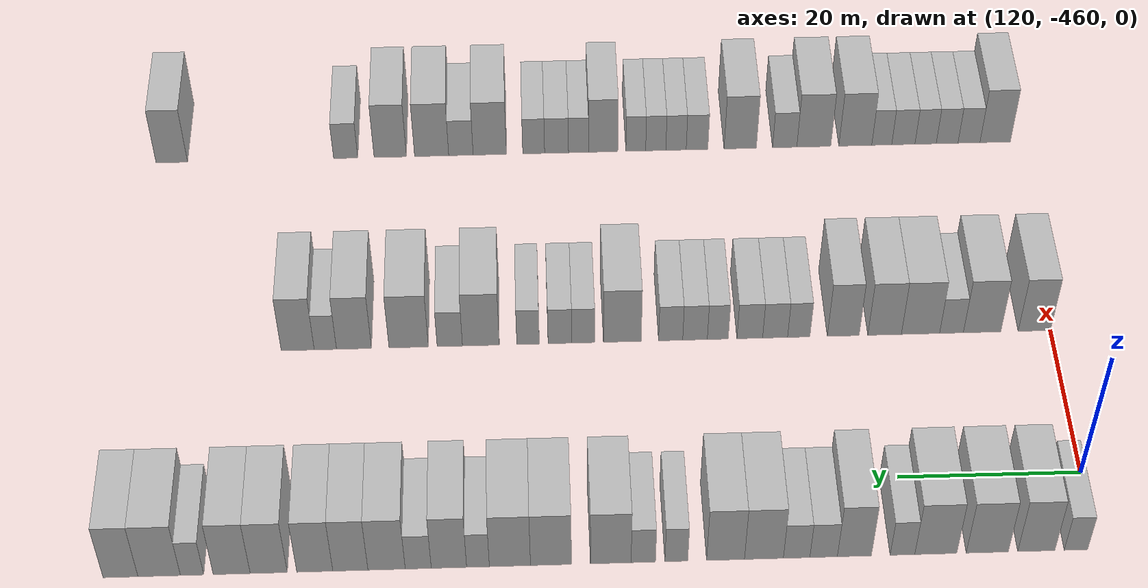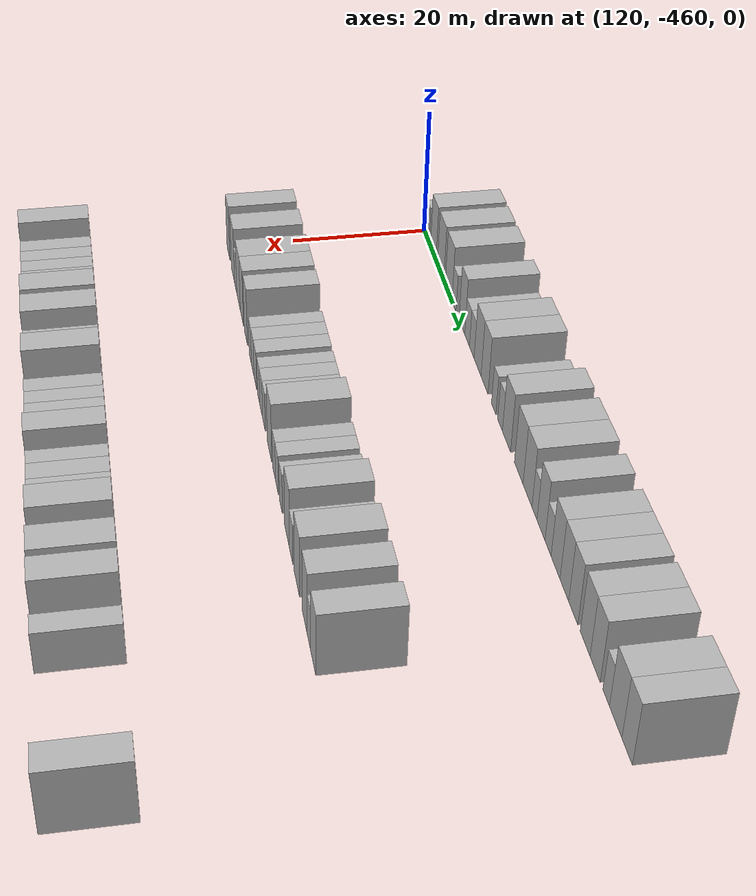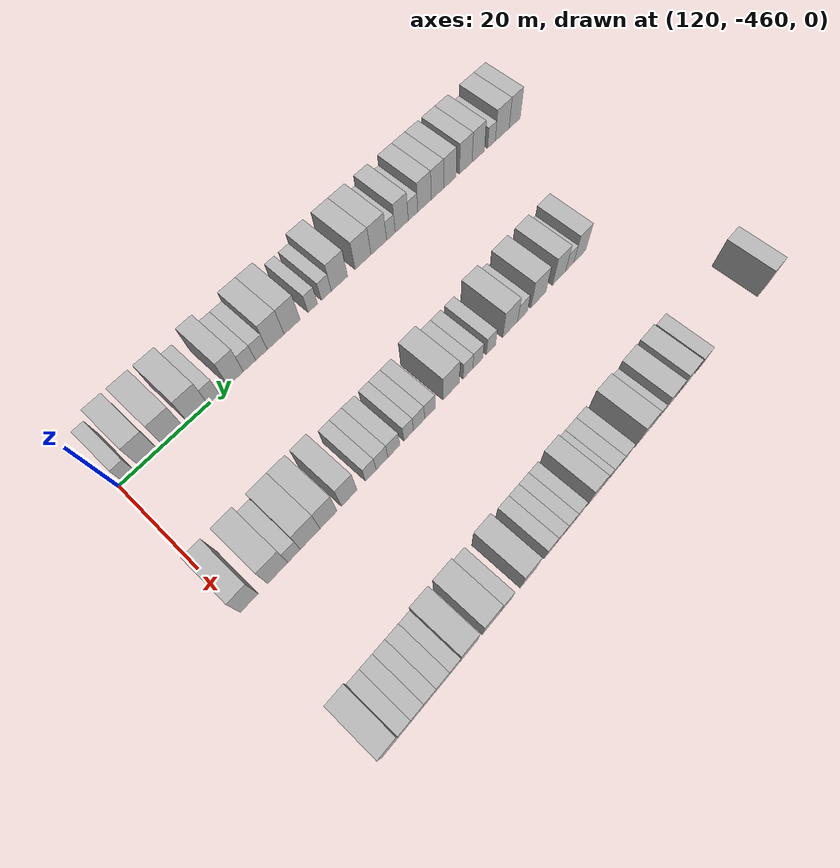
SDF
<sdf version="1.6">
 <world name="default">
  <model name="building_685">
   <static>1</static>
   <pose>115.0000 -457.7495 0 0.000000 0.000000 0.000000</pose>
   <link name="link">
    <pose>0 0 3.00 0 0 0</pose>
    <collision name="collision"><geometry><box><size>10.0000 2.5010 6.0000</size></box></geometry></collision>
    <visual name="visual">
     <cast_shadows>0</cast_shadows>
     <geometry><box><size>10.0000 2.5010 6.0000</size></box></geometry>
     <material>
      <script>
       <uri>model://HANNAS_wall/materials/scripts</uri>
       <uri>model://HANNAS_wall/materials/textures</uri>
       <name>vrc/HANNAS_wall</name>
      </script>
     </material>
    </visual>
   </link>
  </model>
  <model name="building_686">
   <static>1</static>
   <pose>115.0000 -453.5165 0 0.000000 0.000000 0.000000</pose>
   <link name="link">
    <pose>0 0 4.50 0 0 0</pose>
    <collision name="collision"><geometry><box><size>10.0000 3.9651 9.0000</size></box></geometry></collision>
    <visual name="visual">
     <cast_shadows>0</cast_shadows>
     <geometry><box><size>10.0000 3.9651 9.0000</size></box></geometry>
     <material>
      <script>
       <uri>model://HANNAS_wall/materials/scripts</uri>
       <uri>model://HANNAS_wall/materials/textures</uri>
       <name>vrc/HANNAS_wall</name>
      </script>
     </material>
    </visual>
   </link>
  </model>
  <model name="building_687">
   <static>1</static>
   <pose>115.0000 -448.2879 0 0.000000 0.000000 0.000000</pose>
   <link name="link">
    <pose>0 0 4.50 0 0 0</pose>
    <collision name="collision"><geometry><box><size>10.0000 4.4921 9.0000</size></box></geometry></collision>
    <visual name="visual">
     <cast_shadows>0</cast_shadows>
     <geometry><box><size>10.0000 4.4921 9.0000</size></box></geometry>
     <material>
      <script>
       <uri>model://HANNAS_wall/materials/scripts</uri>
       <uri>model://HANNAS_wall/materials/textures</uri>
       <name>vrc/HANNAS_wall</name>
      </script>
     </material>
    </visual>
   </link>
  </model>
  <model name="building_688">
   <static>1</static>
   <pose>115.0000 -442.8027 0 0.000000 0.000000 0.000000</pose>
   <link name="link">
    <pose>0 0 4.50 0 0 0</pose>
    <collision name="collision"><geometry><box><size>10.0000 4.4782 9.0000</size></box></geometry></collision>
    <visual name="visual">
     <cast_shadows>0</cast_shadows>
     <geometry><box><size>10.0000 4.4782 9.0000</size></box></geometry>
     <material>
      <script>
       <uri>model://HANNAS_wall/materials/scripts</uri>
       <uri>model://HANNAS_wall/materials/textures</uri>
       <name>vrc/HANNAS_wall</name>
      </script>
     </material>
    </visual>
   </link>
  </model>
  <model name="building_689">
   <static>1</static>
   <pose>115.0000 -439.2537 0 0.000000 0.000000 0.000000</pose>
   <link name="link">
    <pose>0 0 3.00 0 0 0</pose>
    <collision name="collision"><geometry><box><size>10.0000 2.6199 6.0000</size></box></geometry></collision>
    <visual name="visual">
     <cast_shadows>0</cast_shadows>
     <geometry><box><size>10.0000 2.6199 6.0000</size></box></geometry>
     <material>
      <script>
       <uri>model://HANNAS_wall/materials/scripts</uri>
       <uri>model://HANNAS_wall/materials/textures</uri>
       <name>vrc/HANNAS_wall</name>
      </script>
     </material>
    </visual>
   </link>
  </model>
  <model name="building_690">
   <static>1</static>
   <pose>115.0000 -434.1343 0 0.000000 0.000000 0.000000</pose>
   <link name="link">
    <pose>0 0 4.50 0 0 0</pose>
    <collision name="collision"><geometry><box><size>10.0000 3.6189 9.0000</size></box></geometry></collision>
    <visual name="visual">
     <cast_shadows>0</cast_shadows>
     <geometry><box><size>10.0000 3.6189 9.0000</size></box></geometry>
     <material>
      <script>
       <uri>model://HANNAS_wall/materials/scripts</uri>
       <uri>model://HANNAS_wall/materials/textures</uri>
       <name>vrc/HANNAS_wall</name>
      </script>
     </material>
    </visual>
   </link>
  </model>
  <model name="building_691">
   <static>1</static>
   <pose>115.0000 -430.8651 0 0.000000 0.000000 0.000000</pose>
   <link name="link">
    <pose>0 0 3.00 0 0 0</pose>
    <collision name="collision"><geometry><box><size>10.0000 2.9195 6.0000</size></box></geometry></collision>
    <visual name="visual">
     <cast_shadows>0</cast_shadows>
     <geometry><box><size>10.0000 2.9195 6.0000</size></box></geometry>
     <material>
      <script>
       <uri>model://HANNAS_wall/materials/scripts</uri>
       <uri>model://HANNAS_wall/materials/textures</uri>
       <name>vrc/HANNAS_wall</name>
      </script>
     </material>
    </visual>
   </link>
  </model>
  <model name="building_692">
   <static>1</static>
   <pose>115.0000 -427.9967 0 0.000000 0.000000 0.000000</pose>
   <link name="link">
    <pose>0 0 3.00 0 0 0</pose>
    <collision name="collision"><geometry><box><size>10.0000 2.8173 6.0000</size></box></geometry></collision>
    <visual name="visual">
     <cast_shadows>0</cast_shadows>
     <geometry><box><size>10.0000 2.8173 6.0000</size></box></geometry>
     <material>
      <script>
       <uri>model://HANNAS_wall/materials/scripts</uri>
       <uri>model://HANNAS_wall/materials/textures</uri>
       <name>vrc/HANNAS_wall</name>
      </script>
     </material>
    </visual>
   </link>
  </model>
  <model name="building_693">
   <static>1</static>
   <pose>115.0000 -424.5230 0 0.000000 0.000000 0.000000</pose>
   <link name="link">
    <pose>0 0 4.50 0 0 0</pose>
    <collision name="collision"><geometry><box><size>10.0000 4.1302 9.0000</size></box></geometry></collision>
    <visual name="visual">
     <cast_shadows>0</cast_shadows>
     <geometry><box><size>10.0000 4.1302 9.0000</size></box></geometry>
     <material>
      <script>
       <uri>model://HANNAS_wall/materials/scripts</uri>
       <uri>model://HANNAS_wall/materials/textures</uri>
       <name>vrc/HANNAS_wall</name>
      </script>
     </material>
    </visual>
   </link>
  </model>
  <model name="building_694">
   <static>1</static>
   <pose>115.0000 -420.4504 0 0.000000 0.000000 0.000000</pose>
   <link name="link">
    <pose>0 0 4.50 0 0 0</pose>
    <collision name="collision"><geometry><box><size>10.0000 4.0151 9.0000</size></box></geometry></collision>
    <visual name="visual">
     <cast_shadows>0</cast_shadows>
     <geometry><box><size>10.0000 4.0151 9.0000</size></box></geometry>
     <material>
      <script>
       <uri>model://HANNAS_wall/materials/scripts</uri>
       <uri>model://HANNAS_wall/materials/textures</uri>
       <name>vrc/HANNAS_wall</name>
      </script>
     </material>
    </visual>
   </link>
  </model>
  <model name="building_695">
   <static>1</static>
   <pose>115.0000 -415.2321 0 0.000000 0.000000 0.000000</pose>
   <link name="link">
    <pose>0 0 3.00 0 0 0</pose>
    <collision name="collision"><geometry><box><size>10.0000 2.4215 6.0000</size></box></geometry></collision>
    <visual name="visual">
     <cast_shadows>0</cast_shadows>
     <geometry><box><size>10.0000 2.4215 6.0000</size></box></geometry>
     <material>
      <script>
       <uri>model://HANNAS_wall/materials/scripts</uri>
       <uri>model://HANNAS_wall/materials/textures</uri>
       <name>vrc/HANNAS_wall</name>
      </script>
     </material>
    </visual>
   </link>
  </model>
  <model name="building_696">
   <static>1</static>
   <pose>115.0000 -411.7297 0 0.000000 0.000000 0.000000</pose>
   <link name="link">
    <pose>0 0 3.00 0 0 0</pose>
    <collision name="collision"><geometry><box><size>10.0000 2.5832 6.0000</size></box></geometry></collision>
    <visual name="visual">
     <cast_shadows>0</cast_shadows>
     <geometry><box><size>10.0000 2.5832 6.0000</size></box></geometry>
     <material>
      <script>
       <uri>model://HANNAS_wall/materials/scripts</uri>
       <uri>model://HANNAS_wall/materials/textures</uri>
       <name>vrc/HANNAS_wall</name>
      </script>
     </material>
    </visual>
   </link>
  </model>
  <model name="building_697">
   <static>1</static>
   <pose>115.0000 -408.2871 0 0.000000 0.000000 0.000000</pose>
   <link name="link">
    <pose>0 0 4.50 0 0 0</pose>
    <collision name="collision"><geometry><box><size>10.0000 4.3021 9.0000</size></box></geometry></collision>
    <visual name="visual">
     <cast_shadows>0</cast_shadows>
     <geometry><box><size>10.0000 4.3021 9.0000</size></box></geometry>
     <material>
      <script>
       <uri>model://HANNAS_wall/materials/scripts</uri>
       <uri>model://HANNAS_wall/materials/textures</uri>
       <name>vrc/HANNAS_wall</name>
      </script>
     </material>
    </visual>
   </link>
  </model>
  <model name="building_698">
   <static>1</static>
   <pose>115.0000 -401.9694 0 0.000000 0.000000 0.000000</pose>
   <link name="link">
    <pose>0 0 4.50 0 0 0</pose>
    <collision name="collision"><geometry><box><size>10.0000 4.3332 9.0000</size></box></geometry></collision>
    <visual name="visual">
     <cast_shadows>0</cast_shadows>
     <geometry><box><size>10.0000 4.3332 9.0000</size></box></geometry>
     <material>
      <script>
       <uri>model://HANNAS_wall/materials/scripts</uri>
       <uri>model://HANNAS_wall/materials/textures</uri>
       <name>vrc/HANNAS_wall</name>
      </script>
     </material>
    </visual>
   </link>
  </model>
  <model name="building_699">
   <static>1</static>
   <pose>115.0000 -397.6301 0 0.000000 0.000000 0.000000</pose>
   <link name="link">
    <pose>0 0 4.50 0 0 0</pose>
    <collision name="collision"><geometry><box><size>10.0000 4.3455 9.0000</size></box></geometry></collision>
    <visual name="visual">
     <cast_shadows>0</cast_shadows>
     <geometry><box><size>10.0000 4.3455 9.0000</size></box></geometry>
     <material>
      <script>
       <uri>model://HANNAS_wall/materials/scripts</uri>
       <uri>model://HANNAS_wall/materials/textures</uri>
       <name>vrc/HANNAS_wall</name>
      </script>
     </material>
    </visual>
   </link>
  </model>
  <model name="building_700">
   <static>1</static>
   <pose>115.0000 -394.2560 0 0.000000 0.000000 0.000000</pose>
   <link name="link">
    <pose>0 0 3.00 0 0 0</pose>
    <collision name="collision"><geometry><box><size>10.0000 2.4027 6.0000</size></box></geometry></collision>
    <visual name="visual">
     <cast_shadows>0</cast_shadows>
     <geometry><box><size>10.0000 2.4027 6.0000</size></box></geometry>
     <material>
      <script>
       <uri>model://HANNAS_wall/materials/scripts</uri>
       <uri>model://HANNAS_wall/materials/textures</uri>
       <name>vrc/HANNAS_wall</name>
      </script>
     </material>
    </visual>
   </link>
  </model>
  <model name="building_701">
   <static>1</static>
   <pose>115.0000 -391.1911 0 0.000000 0.000000 0.000000</pose>
   <link name="link">
    <pose>0 0 4.50 0 0 0</pose>
    <collision name="collision"><geometry><box><size>10.0000 3.7272 9.0000</size></box></geometry></collision>
    <visual name="visual">
     <cast_shadows>0</cast_shadows>
     <geometry><box><size>10.0000 3.7272 9.0000</size></box></geometry>
     <material>
      <script>
       <uri>model://HANNAS_wall/materials/scripts</uri>
       <uri>model://HANNAS_wall/materials/textures</uri>
       <name>vrc/HANNAS_wall</name>
      </script>
     </material>
    </visual>
   </link>
  </model>
  <model name="building_702">
   <static>1</static>
   <pose>115.0000 -387.9568 0 0.000000 0.000000 0.000000</pose>
   <link name="link">
    <pose>0 0 3.00 0 0 0</pose>
    <collision name="collision"><geometry><box><size>10.0000 2.7414 6.0000</size></box></geometry></collision>
    <visual name="visual">
     <cast_shadows>0</cast_shadows>
     <geometry><box><size>10.0000 2.7414 6.0000</size></box></geometry>
     <material>
      <script>
       <uri>model://HANNAS_wall/materials/scripts</uri>
       <uri>model://HANNAS_wall/materials/textures</uri>
       <name>vrc/HANNAS_wall</name>
      </script>
     </material>
    </visual>
   </link>
  </model>
  <model name="building_703">
   <static>1</static>
   <pose>115.0000 -384.6195 0 0.000000 0.000000 0.000000</pose>
   <link name="link">
    <pose>0 0 4.50 0 0 0</pose>
    <collision name="collision"><geometry><box><size>10.0000 3.9332 9.0000</size></box></geometry></collision>
    <visual name="visual">
     <cast_shadows>0</cast_shadows>
     <geometry><box><size>10.0000 3.9332 9.0000</size></box></geometry>
     <material>
      <script>
       <uri>model://HANNAS_wall/materials/scripts</uri>
       <uri>model://HANNAS_wall/materials/textures</uri>
       <name>vrc/HANNAS_wall</name>
      </script>
     </material>
    </visual>
   </link>
  </model>
  <model name="building_704">
   <static>1</static>
   <pose>115.0000 -380.8035 0 0.000000 0.000000 0.000000</pose>
   <link name="link">
    <pose>0 0 4.50 0 0 0</pose>
    <collision name="collision"><geometry><box><size>10.0000 3.6988 9.0000</size></box></geometry></collision>
    <visual name="visual">
     <cast_shadows>0</cast_shadows>
     <geometry><box><size>10.0000 3.6988 9.0000</size></box></geometry>
     <material>
      <script>
       <uri>model://HANNAS_wall/materials/scripts</uri>
       <uri>model://HANNAS_wall/materials/textures</uri>
       <name>vrc/HANNAS_wall</name>
      </script>
     </material>
    </visual>
   </link>
  </model>
  <model name="building_705">
   <static>1</static>
   <pose>115.0000 -377.0608 0 0.000000 0.000000 0.000000</pose>
   <link name="link">
    <pose>0 0 4.50 0 0 0</pose>
    <collision name="collision"><geometry><box><size>10.0000 3.7867 9.0000</size></box></geometry></collision>
    <visual name="visual">
     <cast_shadows>0</cast_shadows>
     <geometry><box><size>10.0000 3.7867 9.0000</size></box></geometry>
     <material>
      <script>
       <uri>model://HANNAS_wall/materials/scripts</uri>
       <uri>model://HANNAS_wall/materials/textures</uri>
       <name>vrc/HANNAS_wall</name>
      </script>
     </material>
    </visual>
   </link>
  </model>
  <model name="building_706">
   <static>1</static>
   <pose>115.0000 -372.2156 0 0.000000 0.000000 0.000000</pose>
   <link name="link">
    <pose>0 0 4.50 0 0 0</pose>
    <collision name="collision"><geometry><box><size>10.0000 3.9038 9.0000</size></box></geometry></collision>
    <visual name="visual">
     <cast_shadows>0</cast_shadows>
     <geometry><box><size>10.0000 3.9038 9.0000</size></box></geometry>
     <material>
      <script>
       <uri>model://HANNAS_wall/materials/scripts</uri>
       <uri>model://HANNAS_wall/materials/textures</uri>
       <name>vrc/HANNAS_wall</name>
      </script>
     </material>
    </visual>
   </link>
  </model>
  <model name="building_707">
   <static>1</static>
   <pose>115.0000 -368.3214 0 0.000000 0.000000 0.000000</pose>
   <link name="link">
    <pose>0 0 4.50 0 0 0</pose>
    <collision name="collision"><geometry><box><size>10.0000 3.8847 9.0000</size></box></geometry></collision>
    <visual name="visual">
     <cast_shadows>0</cast_shadows>
     <geometry><box><size>10.0000 3.8847 9.0000</size></box></geometry>
     <material>
      <script>
       <uri>model://HANNAS_wall/materials/scripts</uri>
       <uri>model://HANNAS_wall/materials/textures</uri>
       <name>vrc/HANNAS_wall</name>
      </script>
     </material>
    </visual>
   </link>
  </model>
  <model name="building_708">
   <static>1</static>
   <pose>115.0000 -364.1527 0 0.000000 0.000000 0.000000</pose>
   <link name="link">
    <pose>0 0 3.00 0 0 0</pose>
    <collision name="collision"><geometry><box><size>10.0000 2.4526 6.0000</size></box></geometry></collision>
    <visual name="visual">
     <cast_shadows>0</cast_shadows>
     <geometry><box><size>10.0000 2.4526 6.0000</size></box></geometry>
     <material>
      <script>
       <uri>model://HANNAS_wall/materials/scripts</uri>
       <uri>model://HANNAS_wall/materials/textures</uri>
       <name>vrc/HANNAS_wall</name>
      </script>
     </material>
    </visual>
   </link>
  </model>
  <model name="building_709">
   <static>1</static>
   <pose>115.0000 -360.7029 0 0.000000 0.000000 0.000000</pose>
   <link name="link">
    <pose>0 0 4.50 0 0 0</pose>
    <collision name="collision"><geometry><box><size>10.0000 4.4472 9.0000</size></box></geometry></collision>
    <visual name="visual">
     <cast_shadows>0</cast_shadows>
     <geometry><box><size>10.0000 4.4472 9.0000</size></box></geometry>
     <material>
      <script>
       <uri>model://HANNAS_wall/materials/scripts</uri>
       <uri>model://HANNAS_wall/materials/textures</uri>
       <name>vrc/HANNAS_wall</name>
      </script>
     </material>
    </visual>
   </link>
  </model>
  <model name="building_710">
   <static>1</static>
   <pose>115.0000 -356.6535 0 0.000000 0.000000 0.000000</pose>
   <link name="link">
    <pose>0 0 4.50 0 0 0</pose>
    <collision name="collision"><geometry><box><size>10.0000 3.6515 9.0000</size></box></geometry></collision>
    <visual name="visual">
     <cast_shadows>0</cast_shadows>
     <geometry><box><size>10.0000 3.6515 9.0000</size></box></geometry>
     <material>
      <script>
       <uri>model://HANNAS_wall/materials/scripts</uri>
       <uri>model://HANNAS_wall/materials/textures</uri>
       <name>vrc/HANNAS_wall</name>
      </script>
     </material>
    </visual>
   </link>
  </model>
  <model name="building_916">
   <static>1</static>
   <pose>145.0000 -458.1361 0 0.000000 0.000000 0.000000</pose>
   <link name="link">
    <pose>0 0 4.50 0 0 0</pose>
    <collision name="collision"><geometry><box><size>10.0000 3.7279 9.0000</size></box></geometry></collision>
    <visual name="visual">
     <cast_shadows>0</cast_shadows>
     <geometry><box><size>10.0000 3.7279 9.0000</size></box></geometry>
     <material>
      <script>
       <uri>model://HANNAS_wall/materials/scripts</uri>
       <uri>model://HANNAS_wall/materials/textures</uri>
       <name>vrc/HANNAS_wall</name>
      </script>
     </material>
    </visual>
   </link>
  </model>
  <model name="building_917">
   <static>1</static>
   <pose>145.0000 -452.1160 0 0.000000 0.000000 0.000000</pose>
   <link name="link">
    <pose>0 0 4.50 0 0 0</pose>
    <collision name="collision"><geometry><box><size>10.0000 4.3122 9.0000</size></box></geometry></collision>
    <visual name="visual">
     <cast_shadows>0</cast_shadows>
     <geometry><box><size>10.0000 4.3122 9.0000</size></box></geometry>
     <material>
      <script>
       <uri>model://HANNAS_wall/materials/scripts</uri>
       <uri>model://HANNAS_wall/materials/textures</uri>
       <name>vrc/HANNAS_wall</name>
      </script>
     </material>
    </visual>
   </link>
  </model>
  <model name="building_918">
   <static>1</static>
   <pose>145.0000 -448.5892 0 0.000000 0.000000 0.000000</pose>
   <link name="link">
    <pose>0 0 3.00 0 0 0</pose>
    <collision name="collision"><geometry><box><size>10.0000 2.7413 6.0000</size></box></geometry></collision>
    <visual name="visual">
     <cast_shadows>0</cast_shadows>
     <geometry><box><size>10.0000 2.7413 6.0000</size></box></geometry>
     <material>
      <script>
       <uri>model://HANNAS_wall/materials/scripts</uri>
       <uri>model://HANNAS_wall/materials/textures</uri>
       <name>vrc/HANNAS_wall</name>
      </script>
     </material>
    </visual>
   </link>
  </model>
  <model name="building_919">
   <static>1</static>
   <pose>145.0000 -445.0209 0 0.000000 0.000000 0.000000</pose>
   <link name="link">
    <pose>0 0 4.50 0 0 0</pose>
    <collision name="collision"><geometry><box><size>10.0000 4.3955 9.0000</size></box></geometry></collision>
    <visual name="visual">
     <cast_shadows>0</cast_shadows>
     <geometry><box><size>10.0000 4.3955 9.0000</size></box></geometry>
     <material>
      <script>
       <uri>model://HANNAS_wall/materials/scripts</uri>
       <uri>model://HANNAS_wall/materials/textures</uri>
       <name>vrc/HANNAS_wall</name>
      </script>
     </material>
    </visual>
   </link>
  </model>
  <model name="building_920">
   <static>1</static>
   <pose>145.0000 -440.8927 0 0.000000 0.000000 0.000000</pose>
   <link name="link">
    <pose>0 0 4.50 0 0 0</pose>
    <collision name="collision"><geometry><box><size>10.0000 3.8609 9.0000</size></box></geometry></collision>
    <visual name="visual">
     <cast_shadows>0</cast_shadows>
     <geometry><box><size>10.0000 3.8609 9.0000</size></box></geometry>
     <material>
      <script>
       <uri>model://HANNAS_wall/materials/scripts</uri>
       <uri>model://HANNAS_wall/materials/textures</uri>
       <name>vrc/HANNAS_wall</name>
      </script>
     </material>
    </visual>
   </link>
  </model>
  <model name="building_921">
   <static>1</static>
   <pose>145.0000 -436.1340 0 0.000000 0.000000 0.000000</pose>
   <link name="link">
    <pose>0 0 4.50 0 0 0</pose>
    <collision name="collision"><geometry><box><size>10.0000 3.6564 9.0000</size></box></geometry></collision>
    <visual name="visual">
     <cast_shadows>0</cast_shadows>
     <geometry><box><size>10.0000 3.6564 9.0000</size></box></geometry>
     <material>
      <script>
       <uri>model://HANNAS_wall/materials/scripts</uri>
       <uri>model://HANNAS_wall/materials/textures</uri>
       <name>vrc/HANNAS_wall</name>
      </script>
     </material>
    </visual>
   </link>
  </model>
  <model name="building_922">
   <static>1</static>
   <pose>145.0000 -431.0248 0 0.000000 0.000000 0.000000</pose>
   <link name="link">
    <pose>0 0 3.00 0 0 0</pose>
    <collision name="collision"><geometry><box><size>10.0000 2.5620 6.0000</size></box></geometry></collision>
    <visual name="visual">
     <cast_shadows>0</cast_shadows>
     <geometry><box><size>10.0000 2.5620 6.0000</size></box></geometry>
     <material>
      <script>
       <uri>model://HANNAS_wall/materials/scripts</uri>
       <uri>model://HANNAS_wall/materials/textures</uri>
       <name>vrc/HANNAS_wall</name>
      </script>
     </material>
    </visual>
   </link>
  </model>
  <model name="building_923">
   <static>1</static>
   <pose>145.0000 -428.3115 0 0.000000 0.000000 0.000000</pose>
   <link name="link">
    <pose>0 0 3.00 0 0 0</pose>
    <collision name="collision"><geometry><box><size>10.0000 2.8646 6.0000</size></box></geometry></collision>
    <visual name="visual">
     <cast_shadows>0</cast_shadows>
     <geometry><box><size>10.0000 2.8646 6.0000</size></box></geometry>
     <material>
      <script>
       <uri>model://HANNAS_wall/materials/scripts</uri>
       <uri>model://HANNAS_wall/materials/textures</uri>
       <name>vrc/HANNAS_wall</name>
      </script>
     </material>
    </visual>
   </link>
  </model>
  <model name="building_924">
   <static>1</static>
   <pose>145.0000 -425.4063 0 0.000000 0.000000 0.000000</pose>
   <link name="link">
    <pose>0 0 3.00 0 0 0</pose>
    <collision name="collision"><geometry><box><size>10.0000 2.9458 6.0000</size></box></geometry></collision>
    <visual name="visual">
     <cast_shadows>0</cast_shadows>
     <geometry><box><size>10.0000 2.9458 6.0000</size></box></geometry>
     <material>
      <script>
       <uri>model://HANNAS_wall/materials/scripts</uri>
       <uri>model://HANNAS_wall/materials/textures</uri>
       <name>vrc/HANNAS_wall</name>
      </script>
     </material>
    </visual>
   </link>
  </model>
  <model name="building_925">
   <static>1</static>
   <pose>145.0000 -421.7332 0 0.000000 0.000000 0.000000</pose>
   <link name="link">
    <pose>0 0 3.00 0 0 0</pose>
    <collision name="collision"><geometry><box><size>10.0000 2.4004 6.0000</size></box></geometry></collision>
    <visual name="visual">
     <cast_shadows>0</cast_shadows>
     <geometry><box><size>10.0000 2.4004 6.0000</size></box></geometry>
     <material>
      <script>
       <uri>model://HANNAS_wall/materials/scripts</uri>
       <uri>model://HANNAS_wall/materials/textures</uri>
       <name>vrc/HANNAS_wall</name>
      </script>
     </material>
    </visual>
   </link>
  </model>
  <model name="building_926">
   <static>1</static>
   <pose>145.0000 -419.1240 0 0.000000 0.000000 0.000000</pose>
   <link name="link">
    <pose>0 0 3.00 0 0 0</pose>
    <collision name="collision"><geometry><box><size>10.0000 2.8180 6.0000</size></box></geometry></collision>
    <visual name="visual">
     <cast_shadows>0</cast_shadows>
     <geometry><box><size>10.0000 2.8180 6.0000</size></box></geometry>
     <material>
      <script>
       <uri>model://HANNAS_wall/materials/scripts</uri>
       <uri>model://HANNAS_wall/materials/textures</uri>
       <name>vrc/HANNAS_wall</name>
      </script>
     </material>
    </visual>
   </link>
  </model>
  <model name="building_927">
   <static>1</static>
   <pose>145.0000 -416.3361 0 0.000000 0.000000 0.000000</pose>
   <link name="link">
    <pose>0 0 3.00 0 0 0</pose>
    <collision name="collision"><geometry><box><size>10.0000 2.7577 6.0000</size></box></geometry></collision>
    <visual name="visual">
     <cast_shadows>0</cast_shadows>
     <geometry><box><size>10.0000 2.7577 6.0000</size></box></geometry>
     <material>
      <script>
       <uri>model://HANNAS_wall/materials/scripts</uri>
       <uri>model://HANNAS_wall/materials/textures</uri>
       <name>vrc/HANNAS_wall</name>
      </script>
     </material>
    </visual>
   </link>
  </model>
  <model name="building_928">
   <static>1</static>
   <pose>145.0000 -410.8009 0 0.000000 0.000000 0.000000</pose>
   <link name="link">
    <pose>0 0 4.50 0 0 0</pose>
    <collision name="collision"><geometry><box><size>10.0000 4.3127 9.0000</size></box></geometry></collision>
    <visual name="visual">
     <cast_shadows>0</cast_shadows>
     <geometry><box><size>10.0000 4.3127 9.0000</size></box></geometry>
     <material>
      <script>
       <uri>model://HANNAS_wall/materials/scripts</uri>
       <uri>model://HANNAS_wall/materials/textures</uri>
       <name>vrc/HANNAS_wall</name>
      </script>
     </material>
    </visual>
   </link>
  </model>
  <model name="building_929">
   <static>1</static>
   <pose>145.0000 -406.3349 0 0.000000 0.000000 0.000000</pose>
   <link name="link">
    <pose>0 0 3.00 0 0 0</pose>
    <collision name="collision"><geometry><box><size>10.0000 2.6192 6.0000</size></box></geometry></collision>
    <visual name="visual">
     <cast_shadows>0</cast_shadows>
     <geometry><box><size>10.0000 2.6192 6.0000</size></box></geometry>
     <material>
      <script>
       <uri>model://HANNAS_wall/materials/scripts</uri>
       <uri>model://HANNAS_wall/materials/textures</uri>
       <name>vrc/HANNAS_wall</name>
      </script>
     </material>
    </visual>
   </link>
  </model>
  <model name="building_930">
   <static>1</static>
   <pose>145.0000 -403.6711 0 0.000000 0.000000 0.000000</pose>
   <link name="link">
    <pose>0 0 3.00 0 0 0</pose>
    <collision name="collision"><geometry><box><size>10.0000 2.7085 6.0000</size></box></geometry></collision>
    <visual name="visual">
     <cast_shadows>0</cast_shadows>
     <geometry><box><size>10.0000 2.7085 6.0000</size></box></geometry>
     <material>
      <script>
       <uri>model://HANNAS_wall/materials/scripts</uri>
       <uri>model://HANNAS_wall/materials/textures</uri>
       <name>vrc/HANNAS_wall</name>
      </script>
     </material>
    </visual>
   </link>
  </model>
  <model name="building_931">
   <static>1</static>
   <pose>145.0000 -400.0331 0 0.000000 0.000000 0.000000</pose>
   <link name="link">
    <pose>0 0 3.00 0 0 0</pose>
    <collision name="collision"><geometry><box><size>10.0000 2.5674 6.0000</size></box></geometry></collision>
    <visual name="visual">
     <cast_shadows>0</cast_shadows>
     <geometry><box><size>10.0000 2.5674 6.0000</size></box></geometry>
     <material>
      <script>
       <uri>model://HANNAS_wall/materials/scripts</uri>
       <uri>model://HANNAS_wall/materials/textures</uri>
       <name>vrc/HANNAS_wall</name>
      </script>
     </material>
    </visual>
   </link>
  </model>
  <model name="building_932">
   <static>1</static>
   <pose>145.0000 -394.6444 0 0.000000 0.000000 0.000000</pose>
   <link name="link">
    <pose>0 0 4.50 0 0 0</pose>
    <collision name="collision"><geometry><box><size>10.0000 4.2100 9.0000</size></box></geometry></collision>
    <visual name="visual">
     <cast_shadows>0</cast_shadows>
     <geometry><box><size>10.0000 4.2100 9.0000</size></box></geometry>
     <material>
      <script>
       <uri>model://HANNAS_wall/materials/scripts</uri>
       <uri>model://HANNAS_wall/materials/textures</uri>
       <name>vrc/HANNAS_wall</name>
      </script>
     </material>
    </visual>
   </link>
  </model>
  <model name="building_933">
   <static>1</static>
   <pose>145.0000 -391.0991 0 0.000000 0.000000 0.000000</pose>
   <link name="link">
    <pose>0 0 3.00 0 0 0</pose>
    <collision name="collision"><geometry><box><size>10.0000 2.8806 6.0000</size></box></geometry></collision>
    <visual name="visual">
     <cast_shadows>0</cast_shadows>
     <geometry><box><size>10.0000 2.8806 6.0000</size></box></geometry>
     <material>
      <script>
       <uri>model://HANNAS_wall/materials/scripts</uri>
       <uri>model://HANNAS_wall/materials/textures</uri>
       <name>vrc/HANNAS_wall</name>
      </script>
     </material>
    </visual>
   </link>
  </model>
  <model name="building_934">
   <static>1</static>
   <pose>145.0000 -386.4168 0 0.000000 0.000000 0.000000</pose>
   <link name="link">
    <pose>0 0 4.50 0 0 0</pose>
    <collision name="collision"><geometry><box><size>10.0000 4.4841 9.0000</size></box></geometry></collision>
    <visual name="visual">
     <cast_shadows>0</cast_shadows>
     <geometry><box><size>10.0000 4.4841 9.0000</size></box></geometry>
     <material>
      <script>
       <uri>model://HANNAS_wall/materials/scripts</uri>
       <uri>model://HANNAS_wall/materials/textures</uri>
       <name>vrc/HANNAS_wall</name>
      </script>
     </material>
    </visual>
   </link>
  </model>
  <model name="building_935">
   <static>1</static>
   <pose>145.0000 -380.1836 0 0.000000 0.000000 0.000000</pose>
   <link name="link">
    <pose>0 0 4.50 0 0 0</pose>
    <collision name="collision"><geometry><box><size>10.0000 3.9823 9.0000</size></box></geometry></collision>
    <visual name="visual">
     <cast_shadows>0</cast_shadows>
     <geometry><box><size>10.0000 3.9823 9.0000</size></box></geometry>
     <material>
      <script>
       <uri>model://HANNAS_wall/materials/scripts</uri>
       <uri>model://HANNAS_wall/materials/textures</uri>
       <name>vrc/HANNAS_wall</name>
      </script>
     </material>
    </visual>
   </link>
  </model>
  <model name="building_936">
   <static>1</static>
   <pose>145.0000 -376.9242 0 0.000000 0.000000 0.000000</pose>
   <link name="link">
    <pose>0 0 3.00 0 0 0</pose>
    <collision name="collision"><geometry><box><size>10.0000 2.5364 6.0000</size></box></geometry></collision>
    <visual name="visual">
     <cast_shadows>0</cast_shadows>
     <geometry><box><size>10.0000 2.5364 6.0000</size></box></geometry>
     <material>
      <script>
       <uri>model://HANNAS_wall/materials/scripts</uri>
       <uri>model://HANNAS_wall/materials/textures</uri>
       <name>vrc/HANNAS_wall</name>
      </script>
     </material>
    </visual>
   </link>
  </model>
  <model name="building_937">
   <static>1</static>
   <pose>145.0000 -373.7790 0 0.000000 0.000000 0.000000</pose>
   <link name="link">
    <pose>0 0 4.50 0 0 0</pose>
    <collision name="collision"><geometry><box><size>10.0000 3.7540 9.0000</size></box></geometry></collision>
    <visual name="visual">
     <cast_shadows>0</cast_shadows>
     <geometry><box><size>10.0000 3.7540 9.0000</size></box></geometry>
     <material>
      <script>
       <uri>model://HANNAS_wall/materials/scripts</uri>
       <uri>model://HANNAS_wall/materials/textures</uri>
       <name>vrc/HANNAS_wall</name>
      </script>
     </material>
    </visual>
   </link>
  </model>
  <model name="building_1148">
   <static>1</static>
   <pose>175.0000 -458.1131 0 0.000000 0.000000 0.000000</pose>
   <link name="link">
    <pose>0 0 4.50 0 0 0</pose>
    <collision name="collision"><geometry><box><size>10.0000 3.7738 9.0000</size></box></geometry></collision>
    <visual name="visual">
     <cast_shadows>0</cast_shadows>
     <geometry><box><size>10.0000 3.7738 9.0000</size></box></geometry>
     <material>
      <script>
       <uri>model://HANNAS_wall/materials/scripts</uri>
       <uri>model://HANNAS_wall/materials/textures</uri>
       <name>vrc/HANNAS_wall</name>
      </script>
     </material>
    </visual>
   </link>
  </model>
  <model name="building_1149">
   <static>1</static>
   <pose>175.0000 -454.8671 0 0.000000 0.000000 0.000000</pose>
   <link name="link">
    <pose>0 0 3.00 0 0 0</pose>
    <collision name="collision"><geometry><box><size>10.0000 2.7183 6.0000</size></box></geometry></collision>
    <visual name="visual">
     <cast_shadows>0</cast_shadows>
     <geometry><box><size>10.0000 2.7183 6.0000</size></box></geometry>
     <material>
      <script>
       <uri>model://HANNAS_wall/materials/scripts</uri>
       <uri>model://HANNAS_wall/materials/textures</uri>
       <name>vrc/HANNAS_wall</name>
      </script>
     </material>
    </visual>
   </link>
  </model>
  <model name="building_1150">
   <static>1</static>
   <pose>175.0000 -452.1586 0 0.000000 0.000000 0.000000</pose>
   <link name="link">
    <pose>0 0 3.00 0 0 0</pose>
    <collision name="collision"><geometry><box><size>10.0000 2.6986 6.0000</size></box></geometry></collision>
    <visual name="visual">
     <cast_shadows>0</cast_shadows>
     <geometry><box><size>10.0000 2.6986 6.0000</size></box></geometry>
     <material>
      <script>
       <uri>model://HANNAS_wall/materials/scripts</uri>
       <uri>model://HANNAS_wall/materials/textures</uri>
       <name>vrc/HANNAS_wall</name>
      </script>
     </material>
    </visual>
   </link>
  </model>
  <model name="building_1151">
   <static>1</static>
   <pose>175.0000 -449.4957 0 0.000000 0.000000 0.000000</pose>
   <link name="link">
    <pose>0 0 3.00 0 0 0</pose>
    <collision name="collision"><geometry><box><size>10.0000 2.6271 6.0000</size></box></geometry></collision>
    <visual name="visual">
     <cast_shadows>0</cast_shadows>
     <geometry><box><size>10.0000 2.6271 6.0000</size></box></geometry>
     <material>
      <script>
       <uri>model://HANNAS_wall/materials/scripts</uri>
       <uri>model://HANNAS_wall/materials/textures</uri>
       <name>vrc/HANNAS_wall</name>
      </script>
     </material>
    </visual>
   </link>
  </model>
  <model name="building_1152">
   <static>1</static>
   <pose>175.0000 -446.7456 0 0.000000 0.000000 0.000000</pose>
   <link name="link">
    <pose>0 0 3.00 0 0 0</pose>
    <collision name="collision"><geometry><box><size>10.0000 2.8732 6.0000</size></box></geometry></collision>
    <visual name="visual">
     <cast_shadows>0</cast_shadows>
     <geometry><box><size>10.0000 2.8732 6.0000</size></box></geometry>
     <material>
      <script>
       <uri>model://HANNAS_wall/materials/scripts</uri>
       <uri>model://HANNAS_wall/materials/textures</uri>
       <name>vrc/HANNAS_wall</name>
      </script>
     </material>
    </visual>
   </link>
  </model>
  <model name="building_1153">
   <static>1</static>
   <pose>175.0000 -444.0772 0 0.000000 0.000000 0.000000</pose>
   <link name="link">
    <pose>0 0 3.00 0 0 0</pose>
    <collision name="collision"><geometry><box><size>10.0000 2.4637 6.0000</size></box></geometry></collision>
    <visual name="visual">
     <cast_shadows>0</cast_shadows>
     <geometry><box><size>10.0000 2.4637 6.0000</size></box></geometry>
     <material>
      <script>
       <uri>model://HANNAS_wall/materials/scripts</uri>
       <uri>model://HANNAS_wall/materials/textures</uri>
       <name>vrc/HANNAS_wall</name>
      </script>
     </material>
    </visual>
   </link>
  </model>
  <model name="building_1154">
   <static>1</static>
   <pose>175.0000 -440.8129 0 0.000000 0.000000 0.000000</pose>
   <link name="link">
    <pose>0 0 4.50 0 0 0</pose>
    <collision name="collision"><geometry><box><size>10.0000 4.0649 9.0000</size></box></geometry></collision>
    <visual name="visual">
     <cast_shadows>0</cast_shadows>
     <geometry><box><size>10.0000 4.0649 9.0000</size></box></geometry>
     <material>
      <script>
       <uri>model://HANNAS_wall/materials/scripts</uri>
       <uri>model://HANNAS_wall/materials/textures</uri>
       <name>vrc/HANNAS_wall</name>
      </script>
     </material>
    </visual>
   </link>
  </model>
  <model name="building_1155">
   <static>1</static>
   <pose>175.0000 -435.6826 0 0.000000 0.000000 0.000000</pose>
   <link name="link">
    <pose>0 0 4.50 0 0 0</pose>
    <collision name="collision"><geometry><box><size>10.0000 4.1956 9.0000</size></box></geometry></collision>
    <visual name="visual">
     <cast_shadows>0</cast_shadows>
     <geometry><box><size>10.0000 4.1956 9.0000</size></box></geometry>
     <material>
      <script>
       <uri>model://HANNAS_wall/materials/scripts</uri>
       <uri>model://HANNAS_wall/materials/textures</uri>
       <name>vrc/HANNAS_wall</name>
      </script>
     </material>
    </visual>
   </link>
  </model>
  <model name="building_1156">
   <static>1</static>
   <pose>175.0000 -432.0901 0 0.000000 0.000000 0.000000</pose>
   <link name="link">
    <pose>0 0 3.00 0 0 0</pose>
    <collision name="collision"><geometry><box><size>10.0000 2.9894 6.0000</size></box></geometry></collision>
    <visual name="visual">
     <cast_shadows>0</cast_shadows>
     <geometry><box><size>10.0000 2.9894 6.0000</size></box></geometry>
     <material>
      <script>
       <uri>model://HANNAS_wall/materials/scripts</uri>
       <uri>model://HANNAS_wall/materials/textures</uri>
       <name>vrc/HANNAS_wall</name>
      </script>
     </material>
    </visual>
   </link>
  </model>
  <model name="building_1157">
   <static>1</static>
   <pose>175.0000 -426.6058 0 0.000000 0.000000 0.000000</pose>
   <link name="link">
    <pose>0 0 4.50 0 0 0</pose>
    <collision name="collision"><geometry><box><size>10.0000 3.9791 9.0000</size></box></geometry></collision>
    <visual name="visual">
     <cast_shadows>0</cast_shadows>
     <geometry><box><size>10.0000 3.9791 9.0000</size></box></geometry>
     <material>
      <script>
       <uri>model://HANNAS_wall/materials/scripts</uri>
       <uri>model://HANNAS_wall/materials/textures</uri>
       <name>vrc/HANNAS_wall</name>
      </script>
     </material>
    </visual>
   </link>
  </model>
  <model name="building_1158">
   <static>1</static>
   <pose>175.0000 -421.2820 0 0.000000 0.000000 0.000000</pose>
   <link name="link">
    <pose>0 0 3.00 0 0 0</pose>
    <collision name="collision"><geometry><box><size>10.0000 2.6685 6.0000</size></box></geometry></collision>
    <visual name="visual">
     <cast_shadows>0</cast_shadows>
     <geometry><box><size>10.0000 2.6685 6.0000</size></box></geometry>
     <material>
      <script>
       <uri>model://HANNAS_wall/materials/scripts</uri>
       <uri>model://HANNAS_wall/materials/textures</uri>
       <name>vrc/HANNAS_wall</name>
      </script>
     </material>
    </visual>
   </link>
  </model>
  <model name="building_1159">
   <static>1</static>
   <pose>175.0000 -418.6937 0 0.000000 0.000000 0.000000</pose>
   <link name="link">
    <pose>0 0 3.00 0 0 0</pose>
    <collision name="collision"><geometry><box><size>10.0000 2.5081 6.0000</size></box></geometry></collision>
    <visual name="visual">
     <cast_shadows>0</cast_shadows>
     <geometry><box><size>10.0000 2.5081 6.0000</size></box></geometry>
     <material>
      <script>
       <uri>model://HANNAS_wall/materials/scripts</uri>
       <uri>model://HANNAS_wall/materials/textures</uri>
       <name>vrc/HANNAS_wall</name>
      </script>
     </material>
    </visual>
   </link>
  </model>
  <model name="building_1160">
   <static>1</static>
   <pose>175.0000 -416.2003 0 0.000000 0.000000 0.000000</pose>
   <link name="link">
    <pose>0 0 3.00 0 0 0</pose>
    <collision name="collision"><geometry><box><size>10.0000 2.4787 6.0000</size></box></geometry></collision>
    <visual name="visual">
     <cast_shadows>0</cast_shadows>
     <geometry><box><size>10.0000 2.4787 6.0000</size></box></geometry>
     <material>
      <script>
       <uri>model://HANNAS_wall/materials/scripts</uri>
       <uri>model://HANNAS_wall/materials/textures</uri>
       <name>vrc/HANNAS_wall</name>
      </script>
     </material>
    </visual>
   </link>
  </model>
  <model name="building_1161">
   <static>1</static>
   <pose>175.0000 -413.7486 0 0.000000 0.000000 0.000000</pose>
   <link name="link">
    <pose>0 0 3.00 0 0 0</pose>
    <collision name="collision"><geometry><box><size>10.0000 2.4247 6.0000</size></box></geometry></collision>
    <visual name="visual">
     <cast_shadows>0</cast_shadows>
     <geometry><box><size>10.0000 2.4247 6.0000</size></box></geometry>
     <material>
      <script>
       <uri>model://HANNAS_wall/materials/scripts</uri>
       <uri>model://HANNAS_wall/materials/textures</uri>
       <name>vrc/HANNAS_wall</name>
      </script>
     </material>
    </visual>
   </link>
  </model>
  <model name="building_1162">
   <static>1</static>
   <pose>175.0000 -409.7354 0 0.000000 0.000000 0.000000</pose>
   <link name="link">
    <pose>0 0 4.50 0 0 0</pose>
    <collision name="collision"><geometry><box><size>10.0000 3.6016 9.0000</size></box></geometry></collision>
    <visual name="visual">
     <cast_shadows>0</cast_shadows>
     <geometry><box><size>10.0000 3.6016 9.0000</size></box></geometry>
     <material>
      <script>
       <uri>model://HANNAS_wall/materials/scripts</uri>
       <uri>model://HANNAS_wall/materials/textures</uri>
       <name>vrc/HANNAS_wall</name>
      </script>
     </material>
    </visual>
   </link>
  </model>
  <model name="building_1163">
   <static>1</static>
   <pose>175.0000 -406.7064 0 0.000000 0.000000 0.000000</pose>
   <link name="link">
    <pose>0 0 3.00 0 0 0</pose>
    <collision name="collision"><geometry><box><size>10.0000 2.4564 6.0000</size></box></geometry></collision>
    <visual name="visual">
     <cast_shadows>0</cast_shadows>
     <geometry><box><size>10.0000 2.4564 6.0000</size></box></geometry>
     <material>
      <script>
       <uri>model://HANNAS_wall/materials/scripts</uri>
       <uri>model://HANNAS_wall/materials/textures</uri>
       <name>vrc/HANNAS_wall</name>
      </script>
     </material>
    </visual>
   </link>
  </model>
  <model name="building_1164">
   <static>1</static>
   <pose>175.0000 -404.0106 0 0.000000 0.000000 0.000000</pose>
   <link name="link">
    <pose>0 0 3.00 0 0 0</pose>
    <collision name="collision"><geometry><box><size>10.0000 2.9351 6.0000</size></box></geometry></collision>
    <visual name="visual">
     <cast_shadows>0</cast_shadows>
     <geometry><box><size>10.0000 2.9351 6.0000</size></box></geometry>
     <material>
      <script>
       <uri>model://HANNAS_wall/materials/scripts</uri>
       <uri>model://HANNAS_wall/materials/textures</uri>
       <name>vrc/HANNAS_wall</name>
      </script>
     </material>
    </visual>
   </link>
  </model>
  <model name="building_1165">
   <static>1</static>
   <pose>175.0000 -401.2036 0 0.000000 0.000000 0.000000</pose>
   <link name="link">
    <pose>0 0 3.00 0 0 0</pose>
    <collision name="collision"><geometry><box><size>10.0000 2.6788 6.0000</size></box></geometry></collision>
    <visual name="visual">
     <cast_shadows>0</cast_shadows>
     <geometry><box><size>10.0000 2.6788 6.0000</size></box></geometry>
     <material>
      <script>
       <uri>model://HANNAS_wall/materials/scripts</uri>
       <uri>model://HANNAS_wall/materials/textures</uri>
       <name>vrc/HANNAS_wall</name>
      </script>
     </material>
    </visual>
   </link>
  </model>
  <model name="building_1166">
   <static>1</static>
   <pose>175.0000 -395.8184 0 0.000000 0.000000 0.000000</pose>
   <link name="link">
    <pose>0 0 4.50 0 0 0</pose>
    <collision name="collision"><geometry><box><size>10.0000 4.0917 9.0000</size></box></geometry></collision>
    <visual name="visual">
     <cast_shadows>0</cast_shadows>
     <geometry><box><size>10.0000 4.0917 9.0000</size></box></geometry>
     <material>
      <script>
       <uri>model://HANNAS_wall/materials/scripts</uri>
       <uri>model://HANNAS_wall/materials/textures</uri>
       <name>vrc/HANNAS_wall</name>
      </script>
     </material>
    </visual>
   </link>
  </model>
  <model name="building_1167">
   <static>1</static>
   <pose>175.0000 -392.2767 0 0.000000 0.000000 0.000000</pose>
   <link name="link">
    <pose>0 0 3.00 0 0 0</pose>
    <collision name="collision"><geometry><box><size>10.0000 2.9916 6.0000</size></box></geometry></collision>
    <visual name="visual">
     <cast_shadows>0</cast_shadows>
     <geometry><box><size>10.0000 2.9916 6.0000</size></box></geometry>
     <material>
      <script>
       <uri>model://HANNAS_wall/materials/scripts</uri>
       <uri>model://HANNAS_wall/materials/textures</uri>
       <name>vrc/HANNAS_wall</name>
      </script>
     </material>
    </visual>
   </link>
  </model>
  <model name="building_1168">
   <static>1</static>
   <pose>175.0000 -388.6922 0 0.000000 0.000000 0.000000</pose>
   <link name="link">
    <pose>0 0 4.50 0 0 0</pose>
    <collision name="collision"><geometry><box><size>10.0000 4.1773 9.0000</size></box></geometry></collision>
    <visual name="visual">
     <cast_shadows>0</cast_shadows>
     <geometry><box><size>10.0000 4.1773 9.0000</size></box></geometry>
     <material>
      <script>
       <uri>model://HANNAS_wall/materials/scripts</uri>
       <uri>model://HANNAS_wall/materials/textures</uri>
       <name>vrc/HANNAS_wall</name>
      </script>
     </material>
    </visual>
   </link>
  </model>
  <model name="building_1169">
   <static>1</static>
   <pose>175.0000 -383.6255 0 0.000000 0.000000 0.000000</pose>
   <link name="link">
    <pose>0 0 4.50 0 0 0</pose>
    <collision name="collision"><geometry><box><size>10.0000 3.9562 9.0000</size></box></geometry></collision>
    <visual name="visual">
     <cast_shadows>0</cast_shadows>
     <geometry><box><size>10.0000 3.9562 9.0000</size></box></geometry>
     <material>
      <script>
       <uri>model://HANNAS_wall/materials/scripts</uri>
       <uri>model://HANNAS_wall/materials/textures</uri>
       <name>vrc/HANNAS_wall</name>
      </script>
     </material>
    </visual>
   </link>
  </model>
  <model name="building_1170">
   <static>1</static>
   <pose>175.0000 -378.1676 0 0.000000 0.000000 0.000000</pose>
   <link name="link">
    <pose>0 0 3.00 0 0 0</pose>
    <collision name="collision"><geometry><box><size>10.0000 2.9596 6.0000</size></box></geometry></collision>
    <visual name="visual">
     <cast_shadows>0</cast_shadows>
     <geometry><box><size>10.0000 2.9596 6.0000</size></box></geometry>
     <material>
      <script>
       <uri>model://HANNAS_wall/materials/scripts</uri>
       <uri>model://HANNAS_wall/materials/textures</uri>
       <name>vrc/HANNAS_wall</name>
      </script>
     </material>
    </visual>
   </link>
  </model>
  <model name="building_1171">
   <static>1</static>
   <pose>175.0000 -356.9325 0 0.000000 0.000000 0.000000</pose>
   <link name="link">
    <pose>0 0 4.50 0 0 0</pose>
    <collision name="collision"><geometry><box><size>10.0000 3.8368 9.0000</size></box></geometry></collision>
    <visual name="visual">
     <cast_shadows>0</cast_shadows>
     <geometry><box><size>10.0000 3.8368 9.0000</size></box></geometry>
     <material>
      <script>
       <uri>model://HANNAS_wall/materials/scripts</uri>
       <uri>model://HANNAS_wall/materials/textures</uri>
       <name>vrc/HANNAS_wall</name>
      </script>
     </material>
    </visual>
   </link>
  </model>
 </world>
</sdf>
